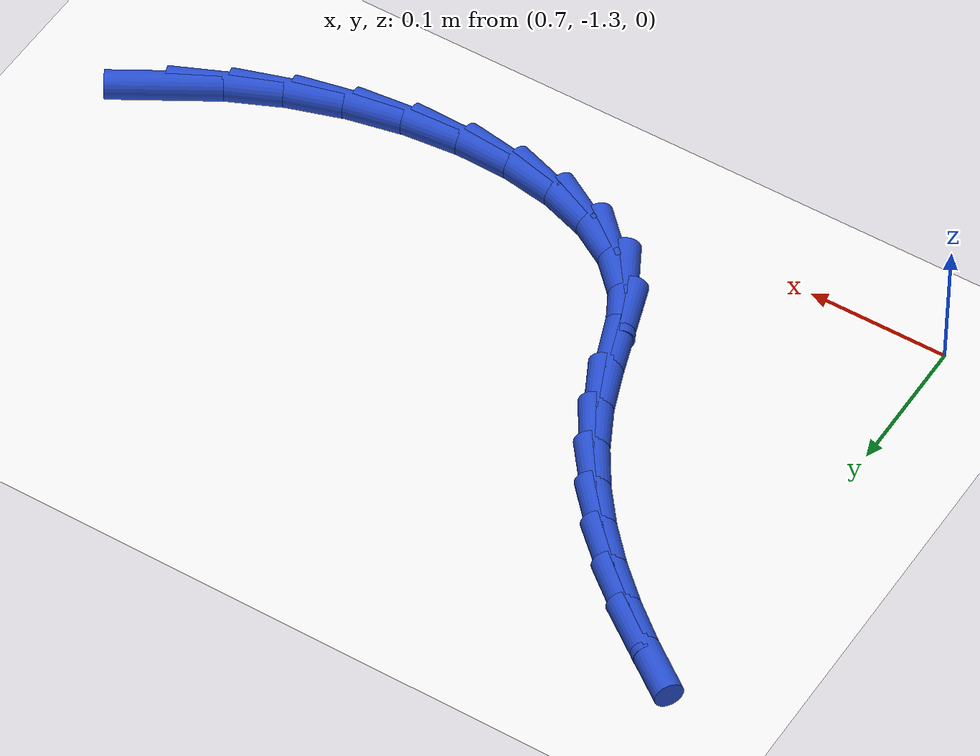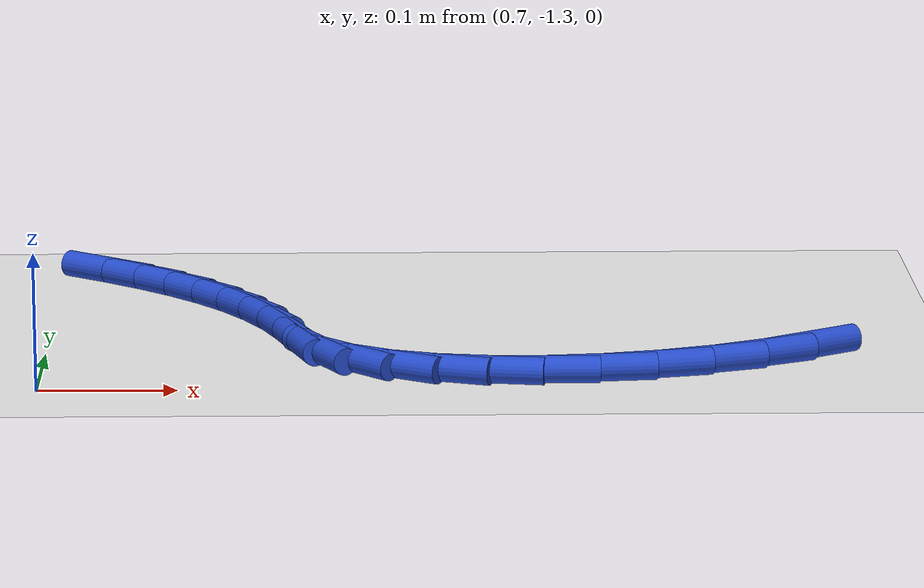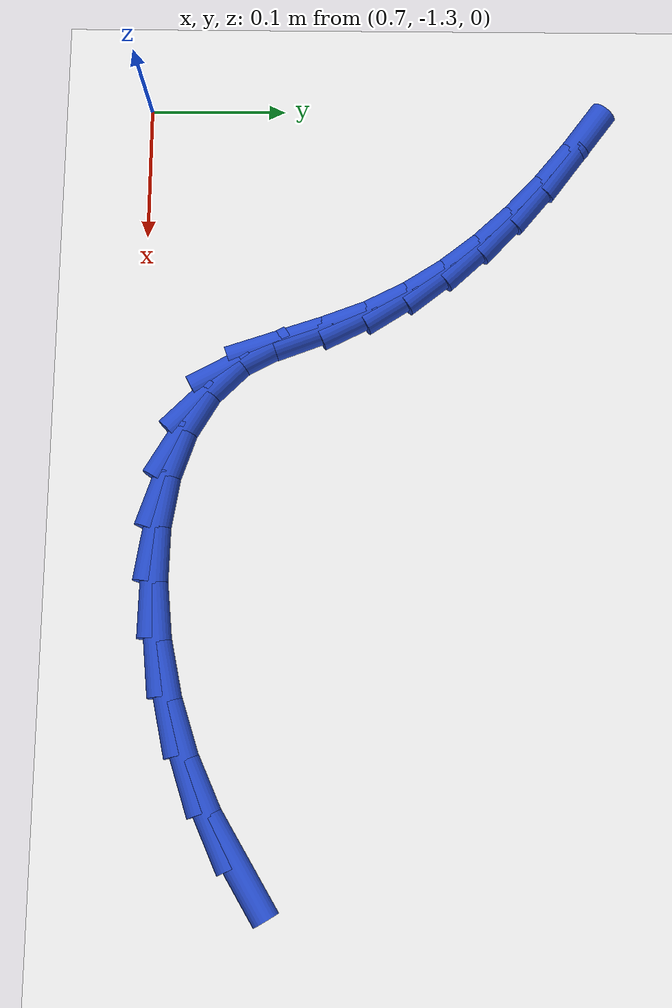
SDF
<sdf version="1.6">
 <world name="default">
  <model name="ground_plane">
   <static>1</static>
   <link name="link">
    <collision name="collision">
     <geometry><plane><normal>0 0 1</normal><size>100 100</size></plane></geometry>
     <surface><friction><ode><mu>100</mu><mu2>50</mu2></ode></friction></surface>
    </collision>
    <visual name="visual">
     <cast_shadows>0</cast_shadows>
     <geometry><plane><normal>0 0 1</normal><size>100 100</size></plane></geometry>
     <material>
      <script><uri>file://media/materials/scripts/gazebo.material</uri><name>Gazebo/WhiteGlow</name></script>
     </material>
    </visual>
   </link>
  </model>
  <model name="line">
   <link name="link_173">
    <pose>1.2554954471471824 -1.2210075491425811 0.01 0 1.57 0.5381413040433822</pose>
    <collision name="collision">
     <geometry><cylinder><radius>0.01</radius><length>0.08</length></cylinder></geometry>
    </collision>
    <visual name="visual">
     <material>
      <script><name>Gazebo/Blue</name><uri>file://media/materials/scripts/gazebo.material</uri></script>
     </material>
     <geometry><cylinder><radius>0.01</radius><length>0.08</length></cylinder></geometry>
    </visual>
   </link>
   <link name="link_174">
    <pose>1.2203172275963503 -1.2420056351415296 0.01 0 1.57 0.42030692781883716</pose>
    <collision name="collision">
     <geometry><cylinder><radius>0.01</radius><length>0.08</length></cylinder></geometry>
    </collision>
    <visual name="visual">
     <material>
      <script><name>Gazebo/Blue</name><uri>file://media/materials/scripts/gazebo.material</uri></script>
     </material>
     <geometry><cylinder><radius>0.01</radius><length>0.08</length></cylinder></geometry>
    </visual>
   </link>
   <link name="link_175">
    <pose>1.1820533320857178 -1.259107328697733 0.01 0 1.57 0.3119087552604882</pose>
    <collision name="collision">
     <geometry><cylinder><radius>0.01</radius><length>0.08</length></cylinder></geometry>
    </collision>
    <visual name="visual">
     <material>
      <script><name>Gazebo/Blue</name><uri>file://media/materials/scripts/gazebo.material</uri></script>
     </material>
     <geometry><cylinder><radius>0.01</radius><length>0.08</length></cylinder></geometry>
    </visual>
   </link>
   <link name="link_176">
    <pose>1.1418295201690387 -1.2720768294296572 0.01 0 1.57 0.20651006991505952</pose>
    <collision name="collision">
     <geometry><cylinder><radius>0.01</radius><length>0.08</length></cylinder></geometry>
    </collision>
    <visual name="visual">
     <material>
      <script><name>Gazebo/Blue</name><uri>file://media/materials/scripts/gazebo.material</uri></script>
     </material>
     <geometry><cylinder><radius>0.01</radius><length>0.08</length></cylinder></geometry>
    </visual>
   </link>
   <link name="link_177">
    <pose>1.1007715514000616 -1.280678336955768 0.01 0 1.57 0.09775148036469898</pose>
    <collision name="collision">
     <geometry><cylinder><radius>0.01</radius><length>0.08</length></cylinder></geometry>
    </collision>
    <visual name="visual">
     <material>
      <script><name>Gazebo/Blue</name><uri>file://media/materials/scripts/gazebo.material</uri></script>
     </material>
     <geometry><cylinder><radius>0.01</radius><length>0.08</length></cylinder></geometry>
    </visual>
   </link>
   <link name="link_178">
    <pose>1.060005185332537 -1.2846760508945305 0.01 0 1.57 -0.021391941996523483</pose>
    <collision name="collision">
     <geometry><cylinder><radius>0.01</radius><length>0.08</length></cylinder></geometry>
    </collision>
    <visual name="visual">
     <material>
      <script><name>Gazebo/Blue</name><uri>file://media/materials/scripts/gazebo.material</uri></script>
     </material>
     <geometry><cylinder><radius>0.01</radius><length>0.08</length></cylinder></geometry>
    </visual>
   </link>
   <link name="link_179">
    <pose>1.0206561815202138 -1.2838341708644105 0.01 0 1.57 -0.1594057593767227</pose>
    <collision name="collision">
     <geometry><cylinder><radius>0.01</radius><length>0.08</length></cylinder></geometry>
    </collision>
    <visual name="visual">
     <material>
      <script><name>Gazebo/Blue</name><uri>file://media/materials/scripts/gazebo.material</uri></script>
     </material>
     <geometry><cylinder><radius>0.01</radius><length>0.08</length></cylinder></geometry>
    </visual>
   </link>
   <link name="link_180">
    <pose>0.9838502995168448 -1.2779168964838736 0.01 0 1.57 -0.3267072140813997</pose>
    <collision name="collision">
     <geometry><cylinder><radius>0.01</radius><length>0.08</length></cylinder></geometry>
    </collision>
    <visual name="visual">
     <material>
      <script><name>Gazebo/Blue</name><uri>file://media/materials/scripts/gazebo.material</uri></script>
     </material>
     <geometry><cylinder><radius>0.01</radius><length>0.08</length></cylinder></geometry>
    </visual>
   </link>
   <link name="link_181">
    <pose>0.9507132988761785 -1.2666884273713852 0.01 0 1.57 -0.5344324395859011</pose>
    <collision name="collision">
     <geometry><cylinder><radius>0.01</radius><length>0.08</length></cylinder></geometry>
    </collision>
    <visual name="visual">
     <material>
      <script><name>Gazebo/Blue</name><uri>file://media/materials/scripts/gazebo.material</uri></script>
     </material>
     <geometry><cylinder><radius>0.01</radius><length>0.08</length></cylinder></geometry>
    </visual>
   </link>
   <link name="link_182">
    <pose>0.9223709391519661 -1.2499129631454116 0.01 0 1.57 -0.7884283854130296</pose>
    <collision name="collision">
     <geometry><cylinder><radius>0.01</radius><length>0.08</length></cylinder></geometry>
    </collision>
    <visual name="visual">
     <material>
      <script><name>Gazebo/Blue</name><uri>file://media/materials/scripts/gazebo.material</uri></script>
     </material>
     <geometry><cylinder><radius>0.01</radius><length>0.08</length></cylinder></geometry>
    </visual>
   </link>
   <link name="link_183">
    <pose>0.899948979897957 -1.227354703424417 0.01 0 1.57 -1.073269391215866</pose>
    <collision name="collision">
     <geometry><cylinder><radius>0.01</radius><length>0.08</length></cylinder></geometry>
    </collision>
    <visual name="visual">
     <material>
      <script><name>Gazebo/Blue</name><uri>file://media/materials/scripts/gazebo.material</uri></script>
     </material>
     <geometry><cylinder><radius>0.01</radius><length>0.08</length></cylinder></geometry>
    </visual>
   </link>
   <link name="link_184">
    <pose>0.8844684564907042 -1.1988504745345254 0.01 0 1.57 -1.2459183368981148</pose>
    <collision name="collision">
     <geometry><cylinder><radius>0.01</radius><length>0.08</length></cylinder></geometry>
    </collision>
    <visual name="visual">
     <material>
      <script><name>Gazebo/Blue</name><uri>file://media/materials/scripts/gazebo.material</uri></script>
     </material>
     <geometry><cylinder><radius>0.01</radius><length>0.08</length></cylinder></geometry>
    </visual>
   </link>
   <link name="link_185">
    <pose>0.8735942043234534 -1.1665646432185384 0.01 0 1.57 -1.2054838176051155</pose>
    <collision name="collision">
     <geometry><cylinder><radius>0.01</radius><length>0.08</length></cylinder></geometry>
    </collision>
    <visual name="visual">
     <material>
      <script><name>Gazebo/Blue</name><uri>file://media/materials/scripts/gazebo.material</uri></script>
     </material>
     <geometry><cylinder><radius>0.01</radius><length>0.08</length></cylinder></geometry>
    </visual>
   </link>
   <link name="link_186">
    <pose>0.8615289835145812 -1.1350199528570273 0.01 0 1.57 -1.09736917387217</pose>
    <collision name="collision">
     <geometry><cylinder><radius>0.01</radius><length>0.08</length></cylinder></geometry>
    </collision>
    <visual name="visual">
     <material>
      <script><name>Gazebo/Blue</name><uri>file://media/materials/scripts/gazebo.material</uri></script>
     </material>
     <geometry><cylinder><radius>0.01</radius><length>0.08</length></cylinder></geometry>
    </visual>
   </link>
   <link name="link_187">
    <pose>0.846470477352842 -1.1056251641352268 0.01 0 1.57 -0.9946787736499483</pose>
    <collision name="collision">
     <geometry><cylinder><radius>0.01</radius><length>0.08</length></cylinder></geometry>
    </collision>
    <visual name="visual">
     <material>
      <script><name>Gazebo/Blue</name><uri>file://media/materials/scripts/gazebo.material</uri></script>
     </material>
     <geometry><cylinder><radius>0.01</radius><length>0.08</length></cylinder></geometry>
    </visual>
   </link>
   <link name="link_188">
    <pose>0.8286585849074601 -1.0782067941796638 0.01 0 1.57 -0.9005554802804244</pose>
    <collision name="collision">
     <geometry><cylinder><radius>0.01</radius><length>0.08</length></cylinder></geometry>
    </collision>
    <visual name="visual">
     <material>
      <script><name>Gazebo/Blue</name><uri>file://media/materials/scripts/gazebo.material</uri></script>
     </material>
     <geometry><cylinder><radius>0.01</radius><length>0.08</length></cylinder></geometry>
    </visual>
   </link>
   <link name="link_189">
    <pose>0.8083464641762308 -1.0525810875224986 0.01 0 1.57 -0.8166832146527485</pose>
    <collision name="collision">
     <geometry><cylinder><radius>0.01</radius><length>0.08</length></cylinder></geometry>
    </collision>
    <visual name="visual">
     <material>
      <script><name>Gazebo/Blue</name><uri>file://media/materials/scripts/gazebo.material</uri></script>
     </material>
     <geometry><cylinder><radius>0.01</radius><length>0.08</length></cylinder></geometry>
    </visual>
   </link>
   <link name="link_190">
    <pose>0.7857872731569489 -1.0285642886958886 0.01 0 1.57 -0.7438171541728072</pose>
    <collision name="collision">
     <geometry><cylinder><radius>0.01</radius><length>0.08</length></cylinder></geometry>
    </collision>
    <visual name="visual">
     <material>
      <script><name>Gazebo/Blue</name><uri>file://media/materials/scripts/gazebo.material</uri></script>
     </material>
     <geometry><cylinder><radius>0.01</radius><length>0.08</length></cylinder></geometry>
    </visual>
   </link>
   <link name="link_191">
    <pose>0.7612341698474087 -1.0059726422319932 0.01 0 1.57 -0.6820069892786489</pose>
    <collision name="collision">
     <geometry><cylinder><radius>0.01</radius><length>0.08</length></cylinder></geometry>
    </collision>
    <visual name="visual">
     <material>
      <script><name>Gazebo/Blue</name><uri>file://media/materials/scripts/gazebo.material</uri></script>
     </material>
     <geometry><cylinder><radius>0.01</radius><length>0.08</length></cylinder></geometry>
    </visual>
   </link>
   <link name="link_192">
    <pose>0.7349403122454047 -0.9846223926629708 0.01 0 1.57 -0.630862926380228</pose>
    <collision name="collision">
     <geometry><cylinder><radius>0.01</radius><length>0.08</length></cylinder></geometry>
    </collision>
    <visual name="visual">
     <material>
      <script><name>Gazebo/Blue</name><uri>file://media/materials/scripts/gazebo.material</uri></script>
     </material>
     <geometry><cylinder><radius>0.01</radius><length>0.08</length></cylinder></geometry>
    </visual>
   </link>
  </model>
 </world>
</sdf>
